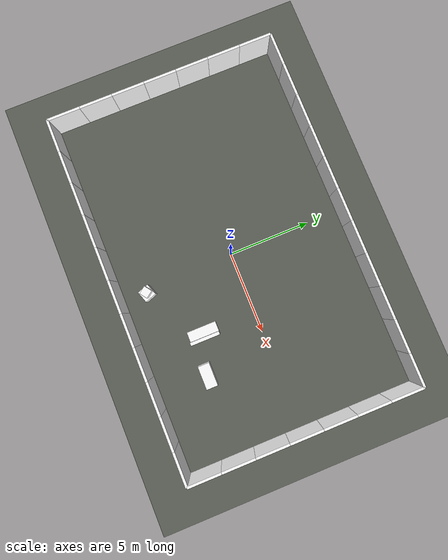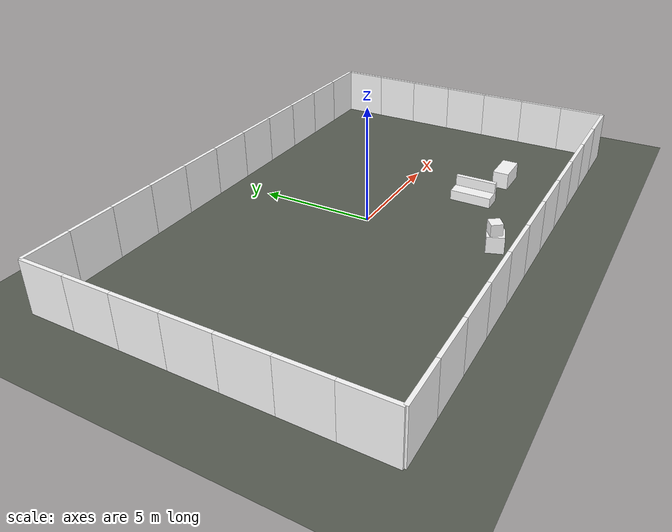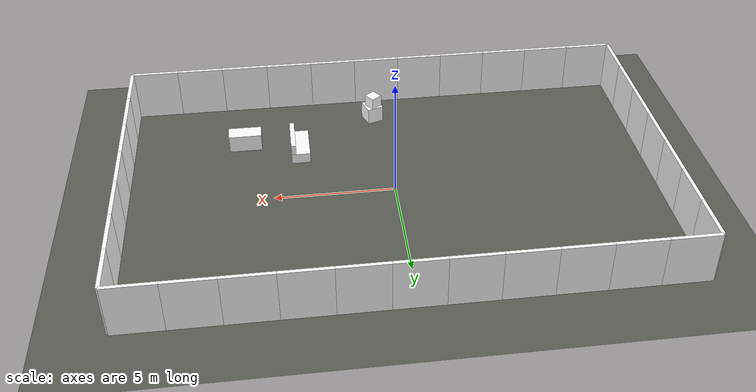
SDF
<sdf version="1.9">
 <world name="office_0">
  <model name="ground_plane">
   <static>true</static>
   <link name="link">
    <collision name="collision">
     <geometry><plane><normal>0 0 1</normal><size>300.000 300.000</size></plane></geometry>
     <surface><friction><ode><mu>1.0</mu><mu2>1.0</mu2></ode></friction></surface>
    </collision>
    <visual name="visual">
     <geometry><plane><normal>0 0 1</normal><size>300.000 300.000</size></plane></geometry>
     <material>
      <ambient>0.350 0.370 0.330 1</ambient>
      <diffuse>0.350 0.370 0.330 1</diffuse>
      <specular>0.08 0.08 0.08 1</specular>
     </material>
    </visual>
   </link>
  </model>
  <model name="wall_2">
   <static>true</static>
   <link name="link">
    <collision name="c0">
     <pose>-10.000 -7.000 1.100 0.0000 0.0000 0.0000</pose>
     <geometry><box><size>2.002 0.150 2.200</size></box></geometry>
    </collision>
    <visual name="v0">
     <pose>-10.000 -7.000 1.100 0.0000 0.0000 0.0000</pose>
     <geometry><box><size>2.002 0.150 2.200</size></box></geometry>
     <material>
      <ambient>1.000 1.000 1.000 1</ambient>
      <diffuse>1.000 1.000 1.000 1</diffuse>
      <specular>0.08 0.08 0.08 1</specular>
      <pbr>
       <metal>
        <albedo_map>model://omnivla_textures/materials/textures/brick_red.png</albedo_map>
        <roughness>0.85</roughness>
        <metalness>0.0</metalness>
       </metal>
      </pbr>
     </material>
    </visual>
    <collision name="c1">
     <pose>-8.000 -7.000 1.100 0.0000 0.0000 0.0000</pose>
     <geometry><box><size>2.002 0.150 2.200</size></box></geometry>
    </collision>
    <visual name="v1">
     <pose>-8.000 -7.000 1.100 0.0000 0.0000 0.0000</pose>
     <geometry><box><size>2.002 0.150 2.200</size></box></geometry>
     <material>
      <ambient>1.000 1.000 1.000 1</ambient>
      <diffuse>1.000 1.000 1.000 1</diffuse>
      <specular>0.08 0.08 0.08 1</specular>
      <pbr>
       <metal>
        <albedo_map>model://omnivla_textures/materials/textures/brick_red.png</albedo_map>
        <roughness>0.85</roughness>
        <metalness>0.0</metalness>
       </metal>
      </pbr>
     </material>
    </visual>
    <collision name="c2">
     <pose>-6.000 -7.000 1.100 0.0000 0.0000 0.0000</pose>
     <geometry><box><size>2.002 0.150 2.200</size></box></geometry>
    </collision>
    <visual name="v2">
     <pose>-6.000 -7.000 1.100 0.0000 0.0000 0.0000</pose>
     <geometry><box><size>2.002 0.150 2.200</size></box></geometry>
     <material>
      <ambient>1.000 1.000 1.000 1</ambient>
      <diffuse>1.000 1.000 1.000 1</diffuse>
      <specular>0.08 0.08 0.08 1</specular>
      <pbr>
       <metal>
        <albedo_map>model://omnivla_textures/materials/textures/brick_red.png</albedo_map>
        <roughness>0.85</roughness>
        <metalness>0.0</metalness>
       </metal>
      </pbr>
     </material>
    </visual>
    <collision name="c3">
     <pose>-4.000 -7.000 1.100 0.0000 0.0000 0.0000</pose>
     <geometry><box><size>2.002 0.150 2.200</size></box></geometry>
    </collision>
    <visual name="v3">
     <pose>-4.000 -7.000 1.100 0.0000 0.0000 0.0000</pose>
     <geometry><box><size>2.002 0.150 2.200</size></box></geometry>
     <material>
      <ambient>1.000 1.000 1.000 1</ambient>
      <diffuse>1.000 1.000 1.000 1</diffuse>
      <specular>0.08 0.08 0.08 1</specular>
      <pbr>
       <metal>
        <albedo_map>model://omnivla_textures/materials/textures/poster_6.png</albedo_map>
        <roughness>0.85</roughness>
        <metalness>0.0</metalness>
       </metal>
      </pbr>
     </material>
    </visual>
    <collision name="c4">
     <pose>-2.000 -7.000 1.100 0.0000 0.0000 0.0000</pose>
     <geometry><box><size>2.002 0.150 2.200</size></box></geometry>
    </collision>
    <visual name="v4">
     <pose>-2.000 -7.000 1.100 0.0000 0.0000 0.0000</pose>
     <geometry><box><size>2.002 0.150 2.200</size></box></geometry>
     <material>
      <ambient>1.000 1.000 1.000 1</ambient>
      <diffuse>1.000 1.000 1.000 1</diffuse>
      <specular>0.08 0.08 0.08 1</specular>
      <pbr>
       <metal>
        <albedo_map>model://omnivla_textures/materials/textures/brick_red.png</albedo_map>
        <roughness>0.85</roughness>
        <metalness>0.0</metalness>
       </metal>
      </pbr>
     </material>
    </visual>
    <collision name="c5">
     <pose>0.000 -7.000 1.100 0.0000 0.0000 0.0000</pose>
     <geometry><box><size>2.002 0.150 2.200</size></box></geometry>
    </collision>
    <visual name="v5">
     <pose>0.000 -7.000 1.100 0.0000 0.0000 0.0000</pose>
     <geometry><box><size>2.002 0.150 2.200</size></box></geometry>
     <material>
      <ambient>1.000 1.000 1.000 1</ambient>
      <diffuse>1.000 1.000 1.000 1</diffuse>
      <specular>0.08 0.08 0.08 1</specular>
      <pbr>
       <metal>
        <albedo_map>model://omnivla_textures/materials/textures/poster_6.png</albedo_map>
        <roughness>0.85</roughness>
        <metalness>0.0</metalness>
       </metal>
      </pbr>
     </material>
    </visual>
    <collision name="c6">
     <pose>2.000 -7.000 1.100 0.0000 0.0000 0.0000</pose>
     <geometry><box><size>2.002 0.150 2.200</size></box></geometry>
    </collision>
    <visual name="v6">
     <pose>2.000 -7.000 1.100 0.0000 0.0000 0.0000</pose>
     <geometry><box><size>2.002 0.150 2.200</size></box></geometry>
     <material>
      <ambient>1.000 1.000 1.000 1</ambient>
      <diffuse>1.000 1.000 1.000 1</diffuse>
      <specular>0.08 0.08 0.08 1</specular>
      <pbr>
       <metal>
        <albedo_map>model://omnivla_textures/materials/textures/brick_red.png</albedo_map>
        <roughness>0.85</roughness>
        <metalness>0.0</metalness>
       </metal>
      </pbr>
     </material>
    </visual>
    <collision name="c7">
     <pose>4.000 -7.000 1.100 0.0000 0.0000 0.0000</pose>
     <geometry><box><size>2.002 0.150 2.200</size></box></geometry>
    </collision>
    <visual name="v7">
     <pose>4.000 -7.000 1.100 0.0000 0.0000 0.0000</pose>
     <geometry><box><size>2.002 0.150 2.200</size></box></geometry>
     <material>
      <ambient>1.000 1.000 1.000 1</ambient>
      <diffuse>1.000 1.000 1.000 1</diffuse>
      <specular>0.08 0.08 0.08 1</specular>
      <pbr>
       <metal>
        <albedo_map>model://omnivla_textures/materials/textures/brick_red.png</albedo_map>
        <roughness>0.85</roughness>
        <metalness>0.0</metalness>
       </metal>
      </pbr>
     </material>
    </visual>
    <collision name="c8">
     <pose>6.000 -7.000 1.100 0.0000 0.0000 0.0000</pose>
     <geometry><box><size>2.002 0.150 2.200</size></box></geometry>
    </collision>
    <visual name="v8">
     <pose>6.000 -7.000 1.100 0.0000 0.0000 0.0000</pose>
     <geometry><box><size>2.002 0.150 2.200</size></box></geometry>
     <material>
      <ambient>1.000 1.000 1.000 1</ambient>
      <diffuse>1.000 1.000 1.000 1</diffuse>
      <specular>0.08 0.08 0.08 1</specular>
      <pbr>
       <metal>
        <albedo_map>model://omnivla_textures/materials/textures/brick_red.png</albedo_map>
        <roughness>0.85</roughness>
        <metalness>0.0</metalness>
       </metal>
      </pbr>
     </material>
    </visual>
    <collision name="c9">
     <pose>8.000 -7.000 1.100 0.0000 0.0000 0.0000</pose>
     <geometry><box><size>2.002 0.150 2.200</size></box></geometry>
    </collision>
    <visual name="v9">
     <pose>8.000 -7.000 1.100 0.0000 0.0000 0.0000</pose>
     <geometry><box><size>2.002 0.150 2.200</size></box></geometry>
     <material>
      <ambient>1.000 1.000 1.000 1</ambient>
      <diffuse>1.000 1.000 1.000 1</diffuse>
      <specular>0.08 0.08 0.08 1</specular>
      <pbr>
       <metal>
        <albedo_map>model://omnivla_textures/materials/textures/brick_red.png</albedo_map>
        <roughness>0.85</roughness>
        <metalness>0.0</metalness>
       </metal>
      </pbr>
     </material>
    </visual>
    <collision name="c10">
     <pose>10.000 -7.000 1.100 0.0000 0.0000 0.0000</pose>
     <geometry><box><size>2.002 0.150 2.200</size></box></geometry>
    </collision>
    <visual name="v10">
     <pose>10.000 -7.000 1.100 0.0000 0.0000 0.0000</pose>
     <geometry><box><size>2.002 0.150 2.200</size></box></geometry>
     <material>
      <ambient>1.000 1.000 1.000 1</ambient>
      <diffuse>1.000 1.000 1.000 1</diffuse>
      <specular>0.08 0.08 0.08 1</specular>
      <pbr>
       <metal>
        <albedo_map>model://omnivla_textures/materials/textures/brick_red.png</albedo_map>
        <roughness>0.85</roughness>
        <metalness>0.0</metalness>
       </metal>
      </pbr>
     </material>
    </visual>
   </link>
  </model>
  <model name="wall_3">
   <static>true</static>
   <link name="link">
    <collision name="c0">
     <pose>-10.000 7.000 1.100 0.0000 0.0000 0.0000</pose>
     <geometry><box><size>2.002 0.150 2.200</size></box></geometry>
    </collision>
    <visual name="v0">
     <pose>-10.000 7.000 1.100 0.0000 0.0000 0.0000</pose>
     <geometry><box><size>2.002 0.150 2.200</size></box></geometry>
     <material>
      <ambient>1.000 1.000 1.000 1</ambient>
      <diffuse>1.000 1.000 1.000 1</diffuse>
      <specular>0.08 0.08 0.08 1</specular>
      <pbr>
       <metal>
        <albedo_map>model://omnivla_textures/materials/textures/poster_0.png</albedo_map>
        <roughness>0.85</roughness>
        <metalness>0.0</metalness>
       </metal>
      </pbr>
     </material>
    </visual>
    <collision name="c1">
     <pose>-8.000 7.000 1.100 0.0000 0.0000 0.0000</pose>
     <geometry><box><size>2.002 0.150 2.200</size></box></geometry>
    </collision>
    <visual name="v1">
     <pose>-8.000 7.000 1.100 0.0000 0.0000 0.0000</pose>
     <geometry><box><size>2.002 0.150 2.200</size></box></geometry>
     <material>
      <ambient>1.000 1.000 1.000 1</ambient>
      <diffuse>1.000 1.000 1.000 1</diffuse>
      <specular>0.08 0.08 0.08 1</specular>
      <pbr>
       <metal>
        <albedo_map>model://omnivla_textures/materials/textures/paint_yellow.png</albedo_map>
        <roughness>0.85</roughness>
        <metalness>0.0</metalness>
       </metal>
      </pbr>
     </material>
    </visual>
    <collision name="c2">
     <pose>-6.000 7.000 1.100 0.0000 0.0000 0.0000</pose>
     <geometry><box><size>2.002 0.150 2.200</size></box></geometry>
    </collision>
    <visual name="v2">
     <pose>-6.000 7.000 1.100 0.0000 0.0000 0.0000</pose>
     <geometry><box><size>2.002 0.150 2.200</size></box></geometry>
     <material>
      <ambient>1.000 1.000 1.000 1</ambient>
      <diffuse>1.000 1.000 1.000 1</diffuse>
      <specular>0.08 0.08 0.08 1</specular>
      <pbr>
       <metal>
        <albedo_map>model://omnivla_textures/materials/textures/paint_yellow.png</albedo_map>
        <roughness>0.85</roughness>
        <metalness>0.0</metalness>
       </metal>
      </pbr>
     </material>
    </visual>
    <collision name="c3">
     <pose>-4.000 7.000 1.100 0.0000 0.0000 0.0000</pose>
     <geometry><box><size>2.002 0.150 2.200</size></box></geometry>
    </collision>
    <visual name="v3">
     <pose>-4.000 7.000 1.100 0.0000 0.0000 0.0000</pose>
     <geometry><box><size>2.002 0.150 2.200</size></box></geometry>
     <material>
      <ambient>1.000 1.000 1.000 1</ambient>
      <diffuse>1.000 1.000 1.000 1</diffuse>
      <specular>0.08 0.08 0.08 1</specular>
      <pbr>
       <metal>
        <albedo_map>model://omnivla_textures/materials/textures/paint_yellow.png</albedo_map>
        <roughness>0.85</roughness>
        <metalness>0.0</metalness>
       </metal>
      </pbr>
     </material>
    </visual>
    <collision name="c4">
     <pose>-2.000 7.000 1.100 0.0000 0.0000 0.0000</pose>
     <geometry><box><size>2.002 0.150 2.200</size></box></geometry>
    </collision>
    <visual name="v4">
     <pose>-2.000 7.000 1.100 0.0000 0.0000 0.0000</pose>
     <geometry><box><size>2.002 0.150 2.200</size></box></geometry>
     <material>
      <ambient>1.000 1.000 1.000 1</ambient>
      <diffuse>1.000 1.000 1.000 1</diffuse>
      <specular>0.08 0.08 0.08 1</specular>
      <pbr>
       <metal>
        <albedo_map>model://omnivla_textures/materials/textures/paint_yellow.png</albedo_map>
        <roughness>0.85</roughness>
        <metalness>0.0</metalness>
       </metal>
      </pbr>
     </material>
    </visual>
    <collision name="c5">
     <pose>0.000 7.000 1.100 0.0000 0.0000 0.0000</pose>
     <geometry><box><size>2.002 0.150 2.200</size></box></geometry>
    </collision>
    <visual name="v5">
     <pose>0.000 7.000 1.100 0.0000 0.0000 0.0000</pose>
     <geometry><box><size>2.002 0.150 2.200</size></box></geometry>
     <material>
      <ambient>1.000 1.000 1.000 1</ambient>
      <diffuse>1.000 1.000 1.000 1</diffuse>
      <specular>0.08 0.08 0.08 1</specular>
      <pbr>
       <metal>
        <albedo_map>model://omnivla_textures/materials/textures/paint_yellow.png</albedo_map>
        <roughness>0.85</roughness>
        <metalness>0.0</metalness>
       </metal>
      </pbr>
     </material>
    </visual>
    <collision name="c6">
     <pose>2.000 7.000 1.100 0.0000 0.0000 0.0000</pose>
     <geometry><box><size>2.002 0.150 2.200</size></box></geometry>
    </collision>
    <visual name="v6">
     <pose>2.000 7.000 1.100 0.0000 0.0000 0.0000</pose>
     <geometry><box><size>2.002 0.150 2.200</size></box></geometry>
     <material>
      <ambient>1.000 1.000 1.000 1</ambient>
      <diffuse>1.000 1.000 1.000 1</diffuse>
      <specular>0.08 0.08 0.08 1</specular>
      <pbr>
       <metal>
        <albedo_map>model://omnivla_textures/materials/textures/paint_yellow.png</albedo_map>
        <roughness>0.85</roughness>
        <metalness>0.0</metalness>
       </metal>
      </pbr>
     </material>
    </visual>
    <collision name="c7">
     <pose>4.000 7.000 1.100 0.0000 0.0000 0.0000</pose>
     <geometry><box><size>2.002 0.150 2.200</size></box></geometry>
    </collision>
    <visual name="v7">
     <pose>4.000 7.000 1.100 0.0000 0.0000 0.0000</pose>
     <geometry><box><size>2.002 0.150 2.200</size></box></geometry>
     <material>
      <ambient>1.000 1.000 1.000 1</ambient>
      <diffuse>1.000 1.000 1.000 1</diffuse>
      <specular>0.08 0.08 0.08 1</specular>
      <pbr>
       <metal>
        <albedo_map>model://omnivla_textures/materials/textures/paint_yellow.png</albedo_map>
        <roughness>0.85</roughness>
        <metalness>0.0</metalness>
       </metal>
      </pbr>
     </material>
    </visual>
    <collision name="c8">
     <pose>6.000 7.000 1.100 0.0000 0.0000 0.0000</pose>
     <geometry><box><size>2.002 0.150 2.200</size></box></geometry>
    </collision>
    <visual name="v8">
     <pose>6.000 7.000 1.100 0.0000 0.0000 0.0000</pose>
     <geometry><box><size>2.002 0.150 2.200</size></box></geometry>
     <material>
      <ambient>1.000 1.000 1.000 1</ambient>
      <diffuse>1.000 1.000 1.000 1</diffuse>
      <specular>0.08 0.08 0.08 1</specular>
      <pbr>
       <metal>
        <albedo_map>model://omnivla_textures/materials/textures/paint_yellow.png</albedo_map>
        <roughness>0.85</roughness>
        <metalness>0.0</metalness>
       </metal>
      </pbr>
     </material>
    </visual>
    <collision name="c9">
     <pose>8.000 7.000 1.100 0.0000 0.0000 0.0000</pose>
     <geometry><box><size>2.002 0.150 2.200</size></box></geometry>
    </collision>
    <visual name="v9">
     <pose>8.000 7.000 1.100 0.0000 0.0000 0.0000</pose>
     <geometry><box><size>2.002 0.150 2.200</size></box></geometry>
     <material>
      <ambient>1.000 1.000 1.000 1</ambient>
      <diffuse>1.000 1.000 1.000 1</diffuse>
      <specular>0.08 0.08 0.08 1</specular>
      <pbr>
       <metal>
        <albedo_map>model://omnivla_textures/materials/textures/paint_yellow.png</albedo_map>
        <roughness>0.85</roughness>
        <metalness>0.0</metalness>
       </metal>
      </pbr>
     </material>
    </visual>
    <collision name="c10">
     <pose>10.000 7.000 1.100 0.0000 0.0000 0.0000</pose>
     <geometry><box><size>2.002 0.150 2.200</size></box></geometry>
    </collision>
    <visual name="v10">
     <pose>10.000 7.000 1.100 0.0000 0.0000 0.0000</pose>
     <geometry><box><size>2.002 0.150 2.200</size></box></geometry>
     <material>
      <ambient>1.000 1.000 1.000 1</ambient>
      <diffuse>1.000 1.000 1.000 1</diffuse>
      <specular>0.08 0.08 0.08 1</specular>
      <pbr>
       <metal>
        <albedo_map>model://omnivla_textures/materials/textures/paint_yellow.png</albedo_map>
        <roughness>0.85</roughness>
        <metalness>0.0</metalness>
       </metal>
      </pbr>
     </material>
    </visual>
   </link>
  </model>
  <model name="wall_4">
   <static>true</static>
   <link name="link">
    <collision name="c0">
     <pose>-11.000 -6.000 1.100 0.0000 0.0000 1.5708</pose>
     <geometry><box><size>2.002 0.150 2.200</size></box></geometry>
    </collision>
    <visual name="v0">
     <pose>-11.000 -6.000 1.100 0.0000 0.0000 1.5708</pose>
     <geometry><box><size>2.002 0.150 2.200</size></box></geometry>
     <material>
      <ambient>1.000 1.000 1.000 1</ambient>
      <diffuse>1.000 1.000 1.000 1</diffuse>
      <specular>0.08 0.08 0.08 1</specular>
      <pbr>
       <metal>
        <albedo_map>model://omnivla_textures/materials/textures/poster_5.png</albedo_map>
        <roughness>0.85</roughness>
        <metalness>0.0</metalness>
       </metal>
      </pbr>
     </material>
    </visual>
    <collision name="c1">
     <pose>-11.000 -4.000 1.100 0.0000 0.0000 1.5708</pose>
     <geometry><box><size>2.002 0.150 2.200</size></box></geometry>
    </collision>
    <visual name="v1">
     <pose>-11.000 -4.000 1.100 0.0000 0.0000 1.5708</pose>
     <geometry><box><size>2.002 0.150 2.200</size></box></geometry>
     <material>
      <ambient>1.000 1.000 1.000 1</ambient>
      <diffuse>1.000 1.000 1.000 1</diffuse>
      <specular>0.08 0.08 0.08 1</specular>
      <pbr>
       <metal>
        <albedo_map>model://omnivla_textures/materials/textures/paint_cream.png</albedo_map>
        <roughness>0.85</roughness>
        <metalness>0.0</metalness>
       </metal>
      </pbr>
     </material>
    </visual>
    <collision name="c2">
     <pose>-11.000 -2.000 1.100 0.0000 0.0000 1.5708</pose>
     <geometry><box><size>2.002 0.150 2.200</size></box></geometry>
    </collision>
    <visual name="v2">
     <pose>-11.000 -2.000 1.100 0.0000 0.0000 1.5708</pose>
     <geometry><box><size>2.002 0.150 2.200</size></box></geometry>
     <material>
      <ambient>1.000 1.000 1.000 1</ambient>
      <diffuse>1.000 1.000 1.000 1</diffuse>
      <specular>0.08 0.08 0.08 1</specular>
      <pbr>
       <metal>
        <albedo_map>model://omnivla_textures/materials/textures/paint_cream.png</albedo_map>
        <roughness>0.85</roughness>
        <metalness>0.0</metalness>
       </metal>
      </pbr>
     </material>
    </visual>
    <collision name="c3">
     <pose>-11.000 0.000 1.100 0.0000 0.0000 1.5708</pose>
     <geometry><box><size>2.002 0.150 2.200</size></box></geometry>
    </collision>
    <visual name="v3">
     <pose>-11.000 0.000 1.100 0.0000 0.0000 1.5708</pose>
     <geometry><box><size>2.002 0.150 2.200</size></box></geometry>
     <material>
      <ambient>1.000 1.000 1.000 1</ambient>
      <diffuse>1.000 1.000 1.000 1</diffuse>
      <specular>0.08 0.08 0.08 1</specular>
      <pbr>
       <metal>
        <albedo_map>model://omnivla_textures/materials/textures/paint_cream.png</albedo_map>
        <roughness>0.85</roughness>
        <metalness>0.0</metalness>
       </metal>
      </pbr>
     </material>
    </visual>
    <collision name="c4">
     <pose>-11.000 2.000 1.100 0.0000 0.0000 1.5708</pose>
     <geometry><box><size>2.002 0.150 2.200</size></box></geometry>
    </collision>
    <visual name="v4">
     <pose>-11.000 2.000 1.100 0.0000 0.0000 1.5708</pose>
     <geometry><box><size>2.002 0.150 2.200</size></box></geometry>
     <material>
      <ambient>1.000 1.000 1.000 1</ambient>
      <diffuse>1.000 1.000 1.000 1</diffuse>
      <specular>0.08 0.08 0.08 1</specular>
      <pbr>
       <metal>
        <albedo_map>model://omnivla_textures/materials/textures/paint_cream.png</albedo_map>
        <roughness>0.85</roughness>
        <metalness>0.0</metalness>
       </metal>
      </pbr>
     </material>
    </visual>
    <collision name="c5">
     <pose>-11.000 4.000 1.100 0.0000 0.0000 1.5708</pose>
     <geometry><box><size>2.002 0.150 2.200</size></box></geometry>
    </collision>
    <visual name="v5">
     <pose>-11.000 4.000 1.100 0.0000 0.0000 1.5708</pose>
     <geometry><box><size>2.002 0.150 2.200</size></box></geometry>
     <material>
      <ambient>1.000 1.000 1.000 1</ambient>
      <diffuse>1.000 1.000 1.000 1</diffuse>
      <specular>0.08 0.08 0.08 1</specular>
      <pbr>
       <metal>
        <albedo_map>model://omnivla_textures/materials/textures/paint_cream.png</albedo_map>
        <roughness>0.85</roughness>
        <metalness>0.0</metalness>
       </metal>
      </pbr>
     </material>
    </visual>
    <collision name="c6">
     <pose>-11.000 6.000 1.100 0.0000 0.0000 1.5708</pose>
     <geometry><box><size>2.002 0.150 2.200</size></box></geometry>
    </collision>
    <visual name="v6">
     <pose>-11.000 6.000 1.100 0.0000 0.0000 1.5708</pose>
     <geometry><box><size>2.002 0.150 2.200</size></box></geometry>
     <material>
      <ambient>1.000 1.000 1.000 1</ambient>
      <diffuse>1.000 1.000 1.000 1</diffuse>
      <specular>0.08 0.08 0.08 1</specular>
      <pbr>
       <metal>
        <albedo_map>model://omnivla_textures/materials/textures/paint_cream.png</albedo_map>
        <roughness>0.85</roughness>
        <metalness>0.0</metalness>
       </metal>
      </pbr>
     </material>
    </visual>
   </link>
  </model>
  <model name="wall_5">
   <static>true</static>
   <link name="link">
    <collision name="c0">
     <pose>11.000 -6.000 1.100 0.0000 0.0000 1.5708</pose>
     <geometry><box><size>2.002 0.150 2.200</size></box></geometry>
    </collision>
    <visual name="v0">
     <pose>11.000 -6.000 1.100 0.0000 0.0000 1.5708</pose>
     <geometry><box><size>2.002 0.150 2.200</size></box></geometry>
     <material>
      <ambient>1.000 1.000 1.000 1</ambient>
      <diffuse>1.000 1.000 1.000 1</diffuse>
      <specular>0.08 0.08 0.08 1</specular>
      <pbr>
       <metal>
        <albedo_map>model://omnivla_textures/materials/textures/paint_yellow.png</albedo_map>
        <roughness>0.85</roughness>
        <metalness>0.0</metalness>
       </metal>
      </pbr>
     </material>
    </visual>
    <collision name="c1">
     <pose>11.000 -4.000 1.100 0.0000 0.0000 1.5708</pose>
     <geometry><box><size>2.002 0.150 2.200</size></box></geometry>
    </collision>
    <visual name="v1">
     <pose>11.000 -4.000 1.100 0.0000 0.0000 1.5708</pose>
     <geometry><box><size>2.002 0.150 2.200</size></box></geometry>
     <material>
      <ambient>1.000 1.000 1.000 1</ambient>
      <diffuse>1.000 1.000 1.000 1</diffuse>
      <specular>0.08 0.08 0.08 1</specular>
      <pbr>
       <metal>
        <albedo_map>model://omnivla_textures/materials/textures/paint_yellow.png</albedo_map>
        <roughness>0.85</roughness>
        <metalness>0.0</metalness>
       </metal>
      </pbr>
     </material>
    </visual>
    <collision name="c2">
     <pose>11.000 -2.000 1.100 0.0000 0.0000 1.5708</pose>
     <geometry><box><size>2.002 0.150 2.200</size></box></geometry>
    </collision>
    <visual name="v2">
     <pose>11.000 -2.000 1.100 0.0000 0.0000 1.5708</pose>
     <geometry><box><size>2.002 0.150 2.200</size></box></geometry>
     <material>
      <ambient>1.000 1.000 1.000 1</ambient>
      <diffuse>1.000 1.000 1.000 1</diffuse>
      <specular>0.08 0.08 0.08 1</specular>
      <pbr>
       <metal>
        <albedo_map>model://omnivla_textures/materials/textures/paint_yellow.png</albedo_map>
        <roughness>0.85</roughness>
        <metalness>0.0</metalness>
       </metal>
      </pbr>
     </material>
    </visual>
    <collision name="c3">
     <pose>11.000 0.000 1.100 0.0000 0.0000 1.5708</pose>
     <geometry><box><size>2.002 0.150 2.200</size></box></geometry>
    </collision>
    <visual name="v3">
     <pose>11.000 0.000 1.100 0.0000 0.0000 1.5708</pose>
     <geometry><box><size>2.002 0.150 2.200</size></box></geometry>
     <material>
      <ambient>1.000 1.000 1.000 1</ambient>
      <diffuse>1.000 1.000 1.000 1</diffuse>
      <specular>0.08 0.08 0.08 1</specular>
      <pbr>
       <metal>
        <albedo_map>model://omnivla_textures/materials/textures/paint_yellow.png</albedo_map>
        <roughness>0.85</roughness>
        <metalness>0.0</metalness>
       </metal>
      </pbr>
     </material>
    </visual>
    <collision name="c4">
     <pose>11.000 2.000 1.100 0.0000 0.0000 1.5708</pose>
     <geometry><box><size>2.002 0.150 2.200</size></box></geometry>
    </collision>
    <visual name="v4">
     <pose>11.000 2.000 1.100 0.0000 0.0000 1.5708</pose>
     <geometry><box><size>2.002 0.150 2.200</size></box></geometry>
     <material>
      <ambient>1.000 1.000 1.000 1</ambient>
      <diffuse>1.000 1.000 1.000 1</diffuse>
      <specular>0.08 0.08 0.08 1</specular>
      <pbr>
       <metal>
        <albedo_map>model://omnivla_textures/materials/textures/paint_yellow.png</albedo_map>
        <roughness>0.85</roughness>
        <metalness>0.0</metalness>
       </metal>
      </pbr>
     </material>
    </visual>
    <collision name="c5">
     <pose>11.000 4.000 1.100 0.0000 0.0000 1.5708</pose>
     <geometry><box><size>2.002 0.150 2.200</size></box></geometry>
    </collision>
    <visual name="v5">
     <pose>11.000 4.000 1.100 0.0000 0.0000 1.5708</pose>
     <geometry><box><size>2.002 0.150 2.200</size></box></geometry>
     <material>
      <ambient>1.000 1.000 1.000 1</ambient>
      <diffuse>1.000 1.000 1.000 1</diffuse>
      <specular>0.08 0.08 0.08 1</specular>
      <pbr>
       <metal>
        <albedo_map>model://omnivla_textures/materials/textures/paint_yellow.png</albedo_map>
        <roughness>0.85</roughness>
        <metalness>0.0</metalness>
       </metal>
      </pbr>
     </material>
    </visual>
    <collision name="c6">
     <pose>11.000 6.000 1.100 0.0000 0.0000 1.5708</pose>
     <geometry><box><size>2.002 0.150 2.200</size></box></geometry>
    </collision>
    <visual name="v6">
     <pose>11.000 6.000 1.100 0.0000 0.0000 1.5708</pose>
     <geometry><box><size>2.002 0.150 2.200</size></box></geometry>
     <material>
      <ambient>1.000 1.000 1.000 1</ambient>
      <diffuse>1.000 1.000 1.000 1</diffuse>
      <specular>0.08 0.08 0.08 1</specular>
      <pbr>
       <metal>
        <albedo_map>model://omnivla_textures/materials/textures/paint_yellow.png</albedo_map>
        <roughness>0.85</roughness>
        <metalness>0.0</metalness>
       </metal>
      </pbr>
     </material>
    </visual>
   </link>
  </model>
  <model name="crate_1865">
   <static>true</static>
   <pose>0.356 -5.458 0.000 0.0000 0.0000 1.9025</pose>
   <link name="link">
    <collision name="c0">
     <pose>0.000 0.000 0.363 0.0000 0.0000 0.0000</pose>
     <geometry><box><size>0.725 0.725 0.725</size></box></geometry>
    </collision>
    <visual name="v0">
     <pose>0.000 0.000 0.363 0.0000 0.0000 0.0000</pose>
     <geometry><box><size>0.725 0.725 0.725</size></box></geometry>
     <material>
      <ambient>1.000 1.000 1.000 1</ambient>
      <diffuse>1.000 1.000 1.000 1</diffuse>
      <specular>0.08 0.08 0.08 1</specular>
      <pbr>
       <metal>
        <albedo_map>model://omnivla_textures/materials/textures/crate.png</albedo_map>
        <roughness>0.85</roughness>
        <metalness>0.0</metalness>
       </metal>
      </pbr>
     </material>
    </visual>
    <collision name="c1">
     <pose>0.050 0.030 0.979 0.0000 0.0000 0.3000</pose>
     <geometry><box><size>0.508 0.508 0.508</size></box></geometry>
    </collision>
    <visual name="v1">
     <pose>0.050 0.030 0.979 0.0000 0.0000 0.3000</pose>
     <geometry><box><size>0.508 0.508 0.508</size></box></geometry>
     <material>
      <ambient>1.000 1.000 1.000 1</ambient>
      <diffuse>1.000 1.000 1.000 1</diffuse>
      <specular>0.08 0.08 0.08 1</specular>
      <pbr>
       <metal>
        <albedo_map>model://omnivla_textures/materials/textures/cardboard.png</albedo_map>
        <roughness>0.85</roughness>
        <metalness>0.0</metalness>
       </metal>
      </pbr>
     </material>
    </visual>
   </link>
  </model>
  <model name="desk_1866">
   <static>true</static>
   <pose>6.130 -3.911 0.000 0.0000 0.0000 0.0000</pose>
   <link name="link">
    <collision name="c0">
     <pose>0.000 0.000 0.375 0.0000 0.0000 0.0000</pose>
     <geometry><box><size>1.400 0.700 0.750</size></box></geometry>
    </collision>
    <visual name="v0">
     <pose>0.000 0.000 0.375 0.0000 0.0000 0.0000</pose>
     <geometry><box><size>1.400 0.700 0.750</size></box></geometry>
     <material>
      <ambient>1.000 1.000 1.000 1</ambient>
      <diffuse>1.000 1.000 1.000 1</diffuse>
      <specular>0.08 0.08 0.08 1</specular>
      <pbr>
       <metal>
        <albedo_map>model://omnivla_textures/materials/textures/wood_floor.png</albedo_map>
        <roughness>0.85</roughness>
        <metalness>0.0</metalness>
       </metal>
      </pbr>
     </material>
    </visual>
   </link>
  </model>
  <model name="sofa_1877">
   <static>true</static>
   <pose>3.773 -3.256 0.000 0.0000 0.0000 1.5708</pose>
   <link name="link">
    <collision name="c0">
     <pose>0.000 0.000 0.225 0.0000 0.0000 0.0000</pose>
     <geometry><box><size>1.800 0.800 0.450</size></box></geometry>
    </collision>
    <visual name="v0">
     <pose>0.000 0.000 0.225 0.0000 0.0000 0.0000</pose>
     <geometry><box><size>1.800 0.800 0.450</size></box></geometry>
     <material>
      <ambient>1.000 1.000 1.000 1</ambient>
      <diffuse>1.000 1.000 1.000 1</diffuse>
      <specular>0.08 0.08 0.08 1</specular>
      <pbr>
       <metal>
        <albedo_map>model://omnivla_textures/materials/textures/fabric_red.png</albedo_map>
        <roughness>0.85</roughness>
        <metalness>0.0</metalness>
       </metal>
      </pbr>
     </material>
    </visual>
    <collision name="c1">
     <pose>0.000 -0.300 0.675 0.0000 0.0000 0.0000</pose>
     <geometry><box><size>1.800 0.200 0.450</size></box></geometry>
    </collision>
    <visual name="v1">
     <pose>0.000 -0.300 0.675 0.0000 0.0000 0.0000</pose>
     <geometry><box><size>1.800 0.200 0.450</size></box></geometry>
     <material>
      <ambient>1.000 1.000 1.000 1</ambient>
      <diffuse>1.000 1.000 1.000 1</diffuse>
      <specular>0.08 0.08 0.08 1</specular>
      <pbr>
       <metal>
        <albedo_map>model://omnivla_textures/materials/textures/fabric_red.png</albedo_map>
        <roughness>0.85</roughness>
        <metalness>0.0</metalness>
       </metal>
      </pbr>
     </material>
    </visual>
   </link>
  </model>
 </world>
</sdf>
